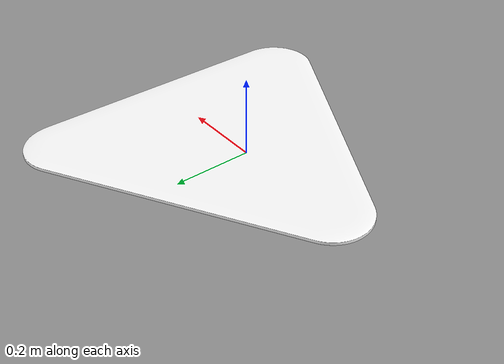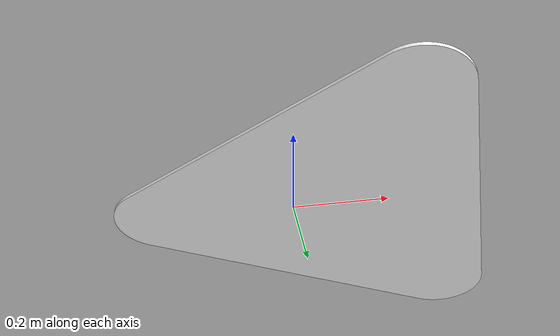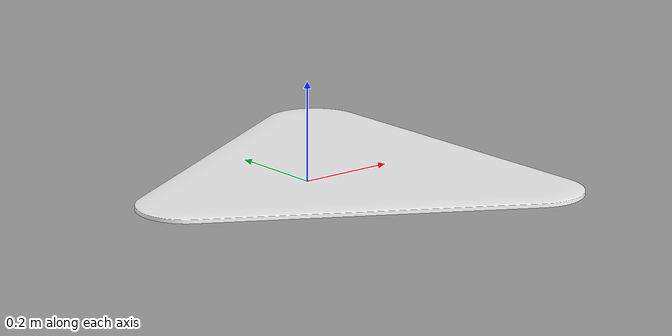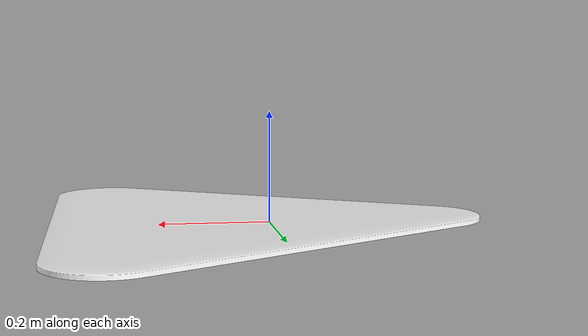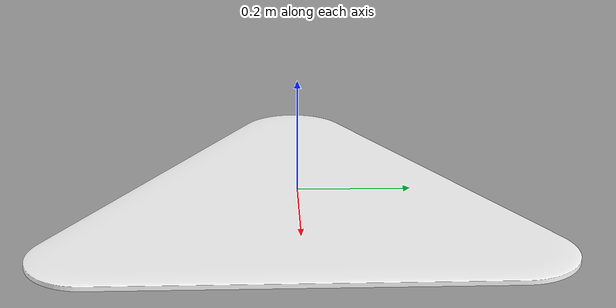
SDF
<?xml version="1.0"?>
<sdf version="1.9">
  <model name="InHouse2027Triangle">
    <static>true</static>
    <link name="link">
      <pose>0.0960 0.0000 0 0 0 0</pose>
      <visual name="visual">
        <geometry>
          <mesh>
            <uri>model://InHouse2027Triangle/mesh.stl</uri>
            <scale>40 40 2</scale>
          </mesh>
        </geometry>
        <material>
          <ambient>1 1 1 1</ambient>
          <diffuse>1 1 1 1</diffuse>
          <specular>0.01 0.01 0.01 1</specular>
          <emissive>0 0 0 1</emissive>
        </material>
      </visual>
      <collision name="collision">
        <pose>-0.0960 0.0000 0.0051 0 0 0</pose>
        <geometry>
          <box>
            <size>0.776 0.864 0.0102</size>
          </box>
        </geometry>
      </collision>
    </link>
  </model>
</sdf>
